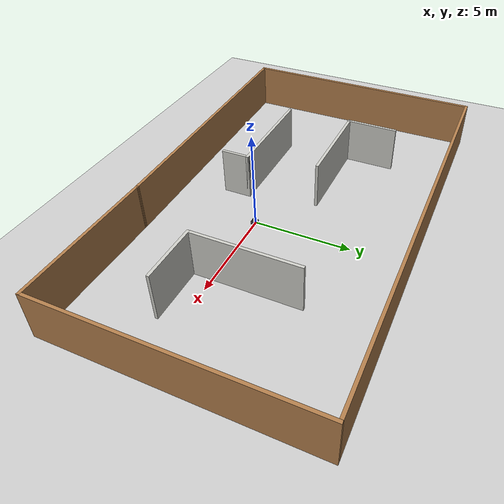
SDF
<sdf version="1.7">
 <world name="default">
  <light name="sun" type="directional">
   <pose>0 0 10 0 -0 0</pose>
   <diffuse>0.8 0.8 0.8 1</diffuse>
   <specular>0.2 0.2 0.2 1</specular>
   <attenuation>
    <range>1000</range>
    <constant>0.9</constant>
    <linear>0.01</linear>
    <quadratic>0.001</quadratic>
   </attenuation>
   <direction>-0.5 0.1 -0.9</direction>
   <spot><inner_angle>0</inner_angle><outer_angle>0</outer_angle><falloff>0</falloff></spot>
  </light>
  <model name="ground_plane">
   <static>1</static>
   <link name="link">
    <collision name="collision">
     <geometry><plane><normal>0 0 1</normal><size>100 100</size></plane></geometry>
     <surface>
      <contact><collide_bitmask>65535</collide_bitmask></contact>
      <friction><ode><mu>100</mu><mu2>50</mu2></ode></friction>
     </surface>
    </collision>
    <visual name="visual">
     <cast_shadows>0</cast_shadows>
     <geometry><plane><normal>0 0 1</normal><size>100 100</size></plane></geometry>
     <material>
      <script><uri>file://media/materials/scripts/gazebo.material</uri><name>Gazebo/Grey</name></script>
     </material>
    </visual>
   </link>
  </model>
  <gravity>0 0 -9.8</gravity>
  <magnetic_field>6e-06 2.3e-05 -4.2e-05</magnetic_field>
  <atmosphere type="adiabatic"/>
  <physics type="ode">
   <max_step_size>0.001</max_step_size>
   <real_time_factor>1</real_time_factor>
   <real_time_update_rate>1000</real_time_update_rate>
  </physics>
  <scene><ambient>0.4 0.4 0.4 1</ambient><background>0.7 0.7 0.7 1</background><shadows>1</shadows></scene>
  <spherical_coordinates>
   <surface_model>EARTH_WGS84</surface_model>
   <latitude_deg>0</latitude_deg>
   <longitude_deg>0</longitude_deg>
   <elevation>0</elevation>
   <heading_deg>0</heading_deg>
  </spherical_coordinates>
  <model name="Maze_room">
   <pose>-0.91657 1.39937 0 0 -0 0</pose>
   <link name="Wall_0">
    <collision name="Wall_0_Collision">
     <geometry><box><size>7.5 0.15 2.5</size></box></geometry>
     <pose>0 0 1.25 0 -0 0</pose>
    </collision>
    <visual name="Wall_0_Visual">
     <pose>0 0 1.25 0 -0 0</pose>
     <geometry><box><size>7.5 0.15 2.5</size></box></geometry>
     <material>
      <script><uri>file://media/materials/scripts/gazebo.material</uri><name>Gazebo/Wood</name></script>
      <ambient>1 1 1 1</ambient>
     </material>
     <meta><layer>0</layer></meta>
    </visual>
    <pose>7.12565 -6.29935 0 0 -0 0</pose>
   </link>
   <link name="Wall_1">
    <collision name="Wall_1_Collision">
     <geometry><box><size>13 0.15 2.5</size></box></geometry>
     <pose>0 0 1.25 0 -0 0</pose>
    </collision>
    <visual name="Wall_1_Visual">
     <pose>0 0 1.25 0 -0 0</pose>
     <geometry><box><size>13 0.15 2.5</size></box></geometry>
     <material>
      <script><uri>file://media/materials/scripts/gazebo.material</uri><name>Gazebo/Wood</name></script>
      <ambient>1 1 1 1</ambient>
     </material>
     <meta><layer>0</layer></meta>
    </visual>
    <pose>10.8007 0.125652 0 0 -0 1.5708</pose>
   </link>
   <link name="Wall_10">
    <collision name="Wall_10_Collision">
     <geometry><box><size>3 0.15 2.5</size></box></geometry>
     <pose>0 0 1.25 0 -0 0</pose>
    </collision>
    <visual name="Wall_10_Visual">
     <pose>0 0 1.25 0 -0 0</pose>
     <geometry><box><size>3 0.15 2.5</size></box></geometry>
     <material>
      <script><uri>file://media/materials/scripts/gazebo.material</uri><name>Gazebo/CeilingTiled</name></script>
      <ambient>1 1 1 1</ambient>
     </material>
     <meta><layer>0</layer></meta>
    </visual>
    <pose>6.61363 -2.39644 0 0 -0 0</pose>
   </link>
   <link name="Wall_12">
    <collision name="Wall_12_Collision">
     <geometry><box><size>5.5 0.15 2.5</size></box></geometry>
     <pose>0 0 1.25 0 -0 0</pose>
    </collision>
    <visual name="Wall_12_Visual">
     <pose>0 0 1.25 0 -0 0</pose>
     <geometry><box><size>5.5 0.15 2.5</size></box></geometry>
     <material>
      <script><uri>file://media/materials/scripts/gazebo.material</uri><name>Gazebo/CeilingTiled</name></script>
      <ambient>1 1 1 1</ambient>
     </material>
     <meta><layer>0</layer></meta>
    </visual>
    <pose>-3.64208 -2.70701 0 0 -0 0</pose>
   </link>
   <link name="Wall_13">
    <collision name="Wall_13_Collision">
     <geometry><box><size>1.5 0.15 2.5</size></box></geometry>
     <pose>0 0 1.25 0 -0 0</pose>
    </collision>
    <visual name="Wall_13_Visual">
     <pose>0 0 1.25 0 -0 0</pose>
     <geometry><box><size>1.5 0.15 2.5</size></box></geometry>
     <material>
      <script><uri>file://media/materials/scripts/gazebo.material</uri><name>Gazebo/CeilingTiled</name></script>
      <ambient>1 1 1 1</ambient>
     </material>
     <meta><layer>0</layer></meta>
    </visual>
    <pose>-0.967082 -3.38201 0 0 -0 -1.5708</pose>
   </link>
   <link name="Wall_2">
    <collision name="Wall_2_Collision">
     <geometry><box><size>21.75 0.15 2.5</size></box></geometry>
     <pose>0 0 1.25 0 -0 0</pose>
    </collision>
    <visual name="Wall_2_Visual">
     <pose>0 0 1.25 0 -0 0</pose>
     <geometry><box><size>21.75 0.15 2.5</size></box></geometry>
     <material>
      <script><uri>file://media/materials/scripts/gazebo.material</uri><name>Gazebo/Wood</name></script>
      <ambient>1 1 1 1</ambient>
     </material>
     <meta><layer>0</layer></meta>
    </visual>
    <pose>0.000651 6.55065 0 0 -0 3.14159</pose>
   </link>
   <link name="Wall_3">
    <collision name="Wall_3_Collision">
     <geometry><box><size>13.25 0.15 2.5</size></box></geometry>
     <pose>0 0 1.25 0 -0 0</pose>
    </collision>
    <visual name="Wall_3_Visual">
     <pose>0 0 1.25 0 -0 0</pose>
     <geometry><box><size>13.25 0.15 2.5</size></box></geometry>
     <material>
      <script><uri>file://media/materials/scripts/gazebo.material</uri><name>Gazebo/Wood</name></script>
      <ambient>1 1 1 1</ambient>
     </material>
     <meta><layer>0</layer></meta>
    </visual>
    <pose>-10.7993 0.000652 0 0 -0 -1.5708</pose>
   </link>
   <link name="Wall_4">
    <collision name="Wall_4_Collision">
     <geometry><box><size>14.4022 0.15 2.5</size></box></geometry>
     <pose>0 0 1.25 0 -0 0</pose>
    </collision>
    <visual name="Wall_4_Visual">
     <pose>0 0 1.25 0 -0 0</pose>
     <geometry><box><size>14.4022 0.15 2.5</size></box></geometry>
     <material>
      <script><uri>file://media/materials/scripts/gazebo.material</uri><name>Gazebo/Wood</name></script>
      <ambient>1 1 1 1</ambient>
     </material>
     <meta><layer>0</layer></meta>
    </visual>
    <pose>-3.67435 -6.42435 0 0 -0 0.017542</pose>
   </link>
   <link name="Wall_6">
    <collision name="Wall_6_Collision">
     <geometry><box><size>2.75 0.15 2.5</size></box></geometry>
     <pose>0 0 1.25 0 -0 0</pose>
    </collision>
    <visual name="Wall_6_Visual">
     <pose>0 0 1.25 0 -0 0</pose>
     <geometry><box><size>2.75 0.15 2.5</size></box></geometry>
     <material>
      <script><uri>file://media/materials/scripts/gazebo.material</uri><name>Gazebo/CeilingTiled</name></script>
      <ambient>1 1 1 1</ambient>
     </material>
     <meta><layer>0</layer></meta>
    </visual>
    <pose>-6.50167 2.14578 0 0 -0 -1.5708</pose>
   </link>
   <link name="Wall_7">
    <collision name="Wall_7_Collision">
     <geometry><box><size>5 0.15 2.5</size></box></geometry>
     <pose>0 0 1.25 0 -0 0</pose>
    </collision>
    <visual name="Wall_7_Visual">
     <pose>0 0 1.25 0 -0 0</pose>
     <geometry><box><size>5 0.15 2.5</size></box></geometry>
     <material>
      <script><uri>file://media/materials/scripts/gazebo.material</uri><name>Gazebo/CeilingTiled</name></script>
      <ambient>1 1 1 1</ambient>
     </material>
     <meta><layer>0</layer></meta>
    </visual>
    <pose>-4.07667 0.845781 0 0 -0 0</pose>
   </link>
   <link name="Wall_9">
    <collision name="Wall_9_Collision">
     <geometry><box><size>5.5 0.15 2.5</size></box></geometry>
     <pose>0 0 1.25 0 -0 0</pose>
    </collision>
    <visual name="Wall_9_Visual">
     <pose>0 0 1.25 0 -0 0</pose>
     <geometry><box><size>5.5 0.15 2.5</size></box></geometry>
     <material>
      <script><uri>file://media/materials/scripts/gazebo.material</uri><name>Gazebo/CeilingTiled</name></script>
      <ambient>1 1 1 1</ambient>
     </material>
     <meta><layer>0</layer></meta>
    </visual>
    <pose>5.18863 0.278558 0 0 -0 -1.5708</pose>
   </link>
   <static>1</static>
  </model>
  <model name="dif_robot">
   <link name="base_link">
    <inertial>
     <pose>0.041061 0 0.099545 0 -0 0</pose>
     <mass>0.66</mass>
     <inertia>
      <ixx>0.0131625</ixx>
      <ixy>0</ixy>
      <ixz>0.000570682</ixz>
      <iyy>0.0137328</iyy>
      <iyz>0</iyz>
      <izz>0.0200869</izz>
     </inertia>
    </inertial>
    <collision name="base_link_fixed_joint_lump__chassis_collision">
     <pose>0.05 0 0.075 0 -0 0</pose>
     <geometry><box><size>0.3 0.3 0.15</size></box></geometry>
    </collision>
    <collision name="base_link_fixed_joint_lump__camera_link_collision_1">
     <pose>0.21 0 0.12 0 -0 0</pose>
     <geometry><box><size>0.02 0.1 0.028</size></box></geometry>
    </collision>
    <collision name="base_link_fixed_joint_lump__lidar_link_collision_2">
     <pose>0 0 0.18 0 -0 0</pose>
     <geometry><cylinder><length>0.06</length><radius>0.06</radius></cylinder></geometry>
    </collision>
    <visual name="base_link_fixed_joint_lump__chassis_visual">
     <pose>0.05 0 0.075 0 -0 0</pose>
     <geometry><box><size>0.3 0.3 0.15</size></box></geometry>
     <material>
      <script><name>Gazebo/Black</name><uri>file://media/materials/scripts/gazebo.material</uri></script>
     </material>
    </visual>
    <visual name="base_link_fixed_joint_lump__camera_link_visual_1">
     <pose>0.21 0 0.12 0 -0 0</pose>
     <geometry><box><size>0.02 0.1 0.028</size></box></geometry>
     <material>
      <script><name>Gazebo/Blue</name><uri>file://media/materials/scripts/gazebo.material</uri></script>
     </material>
    </visual>
    <visual name="base_link_fixed_joint_lump__lidar_link_visual_2">
     <pose>0 0 0.18 0 -0 0</pose>
     <geometry><cylinder><length>0.06</length><radius>0.06</radius></cylinder></geometry>
     <material>
      <script><name>Gazebo/Blue</name><uri>file://media/materials/scripts/gazebo.material</uri></script>
     </material>
    </visual>
    <sensor name="camera_link_camera" type="depth">
     <update_rate>30</update_rate>
     <camera>
      <horizontal_fov>1.0472</horizontal_fov>
      <image><width>640</width><height>480</height><format>R8G8B8</format></image>
      <clip><near>0.05</near><far>3</far></clip>
     </camera>
     <plugin name="camera_plugin" filename="libgazebo_ros_openni_kinect.so">
      <baseline>0.2</baseline>
      <alwaysOn>1</alwaysOn>
      <updateRate>0.0</updateRate>
      <cameraName>camera_ir</cameraName>
      <imageTopicName>/camera/color/image_raw</imageTopicName>
      <cameraInfoTopicName>/camera/color/camera_info</cameraInfoTopicName>
      <depthImageTopicName>/camera/depth/image_raw</depthImageTopicName>
      <depthImageCameraInfoTopicName>/camera/depth/camera_info</depthImageCameraInfoTopicName>
      <pointCloudTopicName>/camera/depth/points</pointCloudTopicName>
      <frameName>camera_link</frameName>
      <pointCloudCutoff>0.5</pointCloudCutoff>
      <pointCloudCutoffMax>3.0</pointCloudCutoffMax>
      <distortionK1>0</distortionK1>
      <distortionK2>0</distortionK2>
      <distortionK3>0</distortionK3>
      <distortionT1>0</distortionT1>
      <distortionT2>0</distortionT2>
      <CxPrime>0</CxPrime>
      <Cx>0</Cx>
      <Cy>0</Cy>
      <focalLength>0</focalLength>
      <hackBaseline>0</hackBaseline>
      <robotNamespace>/</robotNamespace>
     </plugin>
     <pose>0.21 0 0.12 0 -0 0</pose>
    </sensor>
    <sensor name="head_hokuyo_sensor" type="gpu_ray">
     <visualize>0</visualize>
     <update_rate>40</update_rate>
     <ray>
      <scan>
       <horizontal>
        <samples>720</samples>
        <resolution>1</resolution>
        <min_angle>0</min_angle>
        <max_angle>6.28</max_angle>
       </horizontal>
       <vertical><samples>1</samples><min_angle>0</min_angle><max_angle>0</max_angle></vertical>
      </scan>
      <range><min>0.1</min><max>6</max><resolution>0.01</resolution></range>
      <noise><type>gaussian</type><mean>0</mean><stddev>0.01</stddev></noise>
     </ray>
     <plugin name="gazebo_ros_head_hokuyo_controller" filename="libgazebo_ros_gpu_laser.so">
      <topicName>laser_scan</topicName>
      <frameName>lidar_link</frameName>
      <robotNamespace>/</robotNamespace>
     </plugin>
     <pose>0 0 0.18 0 -0 0</pose>
    </sensor>
   </link>
   <joint name="front_caster_wheel_joint" type="revolute">
    <pose relative_to="base_link">0.15 0 -0.005 0 -0 0</pose>
    <parent>base_link</parent>
    <child>front_caster_wheel_link</child>
    <axis>
     <xyz>0 0 1</xyz>
     <limit><lower>-1e+16</lower><upper>1e+16</upper></limit>
     <dynamics><spring_reference>0</spring_reference><spring_stiffness>0</spring_stiffness></dynamics>
    </axis>
   </joint>
   <link name="front_caster_wheel_link">
    <pose relative_to="front_caster_wheel_joint">0 0 0 0 -0 0</pose>
    <inertial>
     <mass>0.1</mass>
     <inertia>
      <ixx>0.000166667</ixx>
      <ixy>0</ixy>
      <ixz>0</ixz>
      <iyy>0.000166667</iyy>
      <iyz>0</iyz>
      <izz>0.000166667</izz>
     </inertia>
    </inertial>
    <collision name="front_caster_wheel_link_collision">
     <geometry><box><size>0.05 0.05 0.05</size></box></geometry>
    </collision>
    <visual name="front_caster_wheel_link_visual">
     <geometry><box><size>0.05 0.05 0.05</size></box></geometry>
     <material>
      <script><name>Gazebo/White</name><uri>file://media/materials/scripts/gazebo.material</uri></script>
     </material>
    </visual>
   </link>
   <joint name="front_wheel_joint" type="revolute">
    <pose relative_to="front_caster_wheel_link">0.025 0 -0.02 -1.5708 0 0</pose>
    <parent>front_caster_wheel_link</parent>
    <child>front_wheel_link</child>
    <axis>
     <xyz>0 0 1</xyz>
     <limit><lower>-1e+16</lower><upper>1e+16</upper></limit>
     <dynamics><spring_reference>0</spring_reference><spring_stiffness>0</spring_stiffness></dynamics>
    </axis>
   </joint>
   <link name="front_wheel_link">
    <pose relative_to="front_wheel_joint">0 0 0 0 -0 0</pose>
    <inertial>
     <mass>0.1</mass>
     <inertia>
      <ixx>3.64583e-05</ixx>
      <ixy>0</ixy>
      <ixz>0</ixz>
      <iyy>3.64583e-05</iyy>
      <iyz>0</iyz>
      <izz>3.125e-05</izz>
     </inertia>
    </inertial>
    <collision name="front_wheel_link_collision">
     <geometry><cylinder><length>0.05</length><radius>0.025</radius></cylinder></geometry>
     <surface><friction><ode><mu>0.02</mu><mu2>0.02</mu2></ode></friction></surface>
    </collision>
    <visual name="front_wheel_link_visual">
     <geometry><cylinder><length>0.05</length><radius>0.025</radius></cylinder></geometry>
     <material>
      <script><name>Gazebo/Red</name><uri>file://media/materials/scripts/gazebo.material</uri></script>
     </material>
    </visual>
   </link>
   <joint name="left_wheel_joint" type="revolute">
    <pose relative_to="base_link">0 0.175 0 -1.5708 0 0</pose>
    <parent>base_link</parent>
    <child>left_wheel</child>
    <axis>
     <xyz>0 0 1</xyz>
     <limit><lower>-1e+16</lower><upper>1e+16</upper></limit>
     <dynamics><spring_reference>0</spring_reference><spring_stiffness>0</spring_stiffness></dynamics>
    </axis>
   </joint>
   <link name="left_wheel">
    <pose relative_to="left_wheel_joint">0 0 0 0 -0 0</pose>
    <inertial>
     <mass>0.1</mass>
     <inertia>
      <ixx>7.58333e-05</ixx>
      <ixy>0</ixy>
      <ixz>0</ixz>
      <iyy>7.58333e-05</iyy>
      <iyz>0</iyz>
      <izz>0.000125</izz>
     </inertia>
    </inertial>
    <collision name="left_wheel_collision">
     <geometry><cylinder><length>0.04</length><radius>0.05</radius></cylinder></geometry>
    </collision>
    <visual name="left_wheel_visual">
     <geometry><cylinder><length>0.04</length><radius>0.05</radius></cylinder></geometry>
     <material>
      <script><name>Gazebo/Red</name><uri>file://media/materials/scripts/gazebo.material</uri></script>
     </material>
    </visual>
   </link>
   <joint name="right_wheel_joint" type="revolute">
    <pose relative_to="base_link">0 -0.175 0 1.5708 -0 0</pose>
    <parent>base_link</parent>
    <child>right_wheel</child>
    <axis>
     <xyz>0 0 -1</xyz>
     <limit><lower>-1e+16</lower><upper>1e+16</upper></limit>
     <dynamics><spring_reference>0</spring_reference><spring_stiffness>0</spring_stiffness></dynamics>
    </axis>
   </joint>
   <link name="right_wheel">
    <pose relative_to="right_wheel_joint">0 0 0 0 -0 0</pose>
    <inertial>
     <mass>0.1</mass>
     <inertia>
      <ixx>7.58333e-05</ixx>
      <ixy>0</ixy>
      <ixz>0</ixz>
      <iyy>7.58333e-05</iyy>
      <iyz>0</iyz>
      <izz>0.000125</izz>
     </inertia>
    </inertial>
    <collision name="right_wheel_collision">
     <geometry><cylinder><length>0.04</length><radius>0.05</radius></cylinder></geometry>
    </collision>
    <visual name="right_wheel_visual">
     <geometry><cylinder><length>0.04</length><radius>0.05</radius></cylinder></geometry>
     <material>
      <script><name>Gazebo/Red</name><uri>file://media/materials/scripts/gazebo.material</uri></script>
     </material>
    </visual>
   </link>
   <plugin name="differential_drive_controller" filename="libgazebo_ros_diff_drive.so">
    <updateRate>100.0</updateRate>
    <leftJoint>left_wheel_joint</leftJoint>
    <rightJoint>right_wheel_joint</rightJoint>
    <wheelSeparation>0.175</wheelSeparation>
    <wheelDiameter>0.1</wheelDiameter>
    <commandTopic>cmd_vel</commandTopic>
    <odometryTopic>odom</odometryTopic>
    <odometryFrame>odom</odometryFrame>
    <publishWheelTF>0</publishWheelTF>
    <publishTF>0</publishTF>
    <robotBaseFrame>base_link</robotBaseFrame>
    <robotNamespace>/</robotNamespace>
   </plugin>
   <static>0</static>
   <plugin name="joint_state_publisher" filename="libgazebo_ros_joint_state_publisher.so">
    <updateRate>100</updateRate>
    <jointName>front_wheel_joint</jointName>
    <robotNamespace>/</robotNamespace>
   </plugin>
   <pose>0.051597 -0.005395 0.05 0 8e-06 0.041839</pose>
  </model>
 </world>
</sdf>
